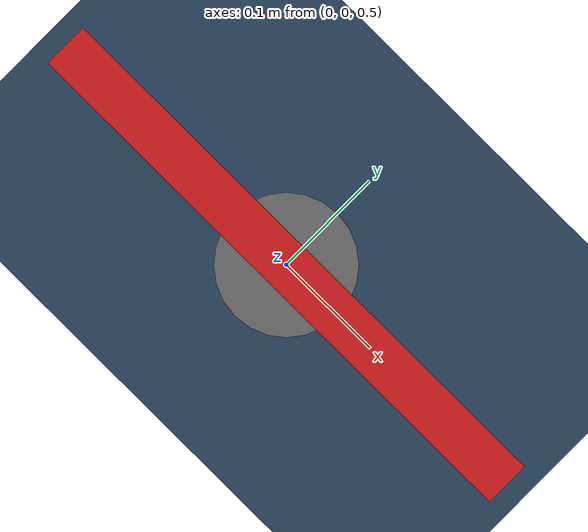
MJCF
<?xml version="1.0" ?>
<mujoco model="compass">
  <extension>
    <plugin plugin="mujoco.magnet"/>
  </extension>

  <statistic center="0 0 0.5" extent="0.8"/>
  <option gravity="0 0 0"/>

  <visual>
    <headlight diffuse="0.6 0.6 0.6" ambient="0.3 0.3 0.3" specular="0 0 0"/>
    <rgba haze="0.15 0.25 0.35 1"/>
    <global azimuth="120" elevation="-20"/>
  </visual>

  <asset>
    <texture type="skybox" builtin="gradient" rgb1="0.3 0.5 0.7" rgb2="0 0 0" width="512" height="3072"/>
    <texture type="2d" name="groundplane" builtin="checker" mark="edge" rgb1="0.2 0.3 0.4" rgb2="0.1 0.2 0.3" markrgb="0.8 0.8 0.8" width="300" height="300"/>
    <material name="groundplane" texture="groundplane" texuniform="true" texrepeat="5 5" reflectance="0.2"/>
  </asset>

  <worldbody>
    <light pos="0 0 1.5" dir="0 0 -1" directional="true"/>
    <geom name="floor" size="0 0 0.05" type="plane" material="groundplane"/>

    <plugin plugin="mujoco.magnet">
      <config key="type" value="linear_field"/>
      <config key="B0" value="0.05 0.05 0"/>
      <config key="dB" value="0 0 0"/>
    </plugin>

    <body name="base" pos="0 0 0.5">
      <geom name="base_geom" type="cylinder" size="0.06 0.02" rgba="0.4 0.4 0.4 1"/>
      <geom type="sphere" pos="0 0 0.025" size="0.01" rgba="0.6 0.6 0.6 1"/>
    </body>

    <body name="needle_mount" pos="0 0 0.52">
      <joint name="needle_hinge" type="hinge" axis="0 0 1" pos="0 0 0" damping="0.05"/>

      <geom name="needle" type="box" size="0.25 0.02 0.02" pos="0 0 0.0" rgba="0.8 0.1 0.1 1" contype="0" conaffinity="0"/>

      <plugin plugin="mujoco.magnet">
        <config key="type" value="induced_magnet"/>
        <config key="mu_r" value="1000"/>
        <config key="V" value="5e-6"/>
        <config key="N" value="0.05 0.475 0.475"/>
      </plugin>

      <site name="magnetometer_site" pos="0.23 0 0" size="0.01" rgba="0 1 0 1"/>
    </body>
  </worldbody>

  <sensor>
    <plugin name="compass_magnetometer" plugin="mujoco.magnet" objtype="site" objname="magnetometer_site">
      <config key="type" value="magnetometer"/>
    </plugin>
  </sensor>
</mujoco>
